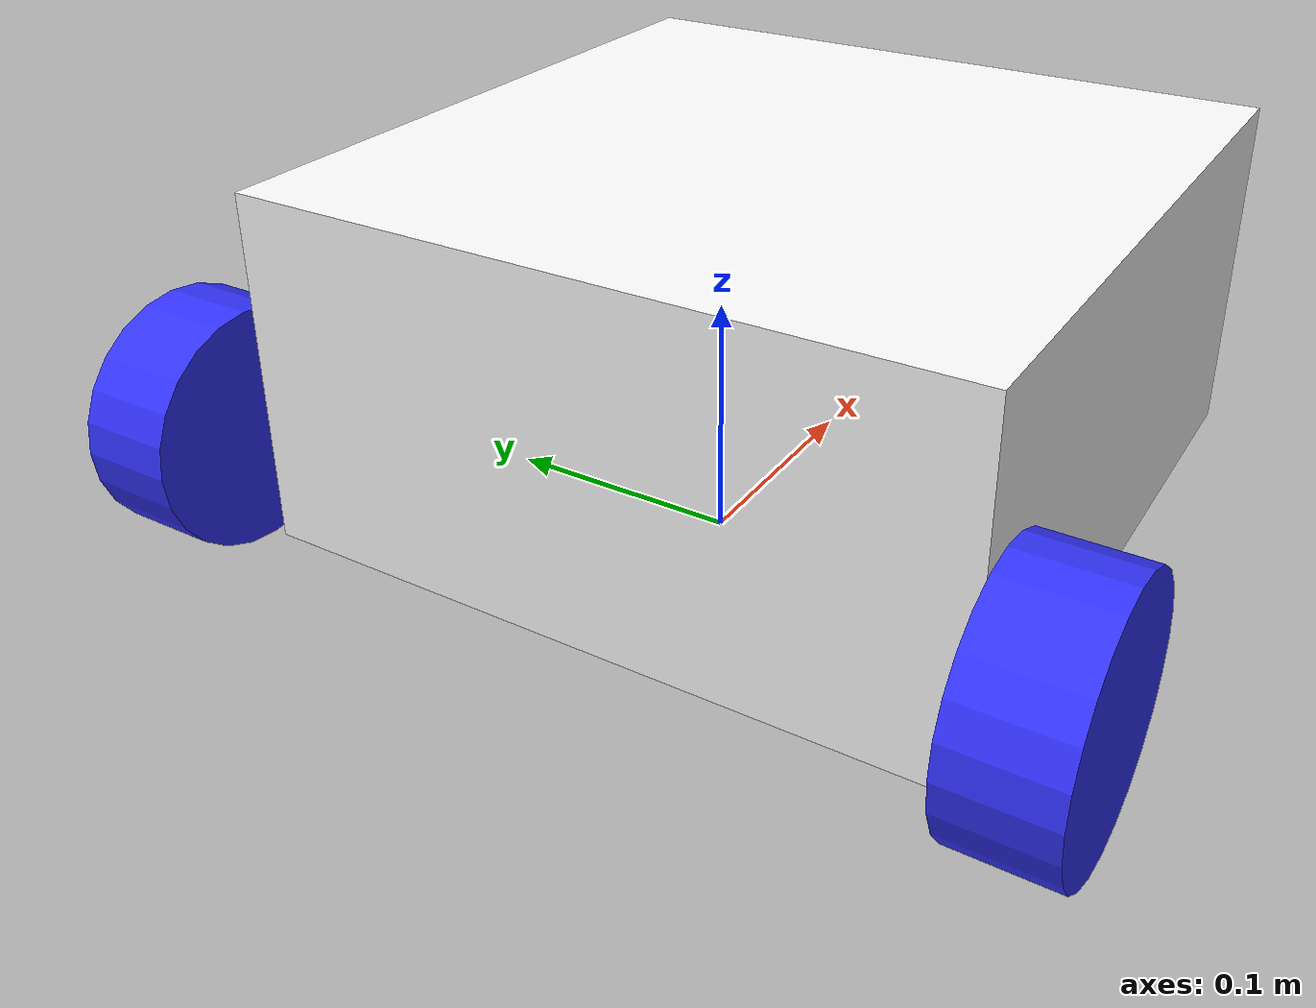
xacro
<?xml version="1.0"?>
<robot xmlns:xacro="http://www.ros.org/wiki/xacro" name="articubot">

  <!-- Include inertials -->
  <xacro:include filename="inertials.xacro"/>

  <!-- Define pi -->
  <xacro:property name="pi" value="3.14159265359"/>

  <!-- Materials -->
  <material name="white">
    <color rgba="1 1 1 1"/>
  </material>

  <material name="orange">
    <color rgba="1 0.3 0.1 1"/>
  </material>

  <material name="blue">
    <color rgba="0.2 0.2 1 1"/>
  </material>

  <material name="black">
    <color rgba="0 0 0 1"/>
  </material>

  <!-- Base Link -->
  <link name="base_link"/>

  <!-- Chassis -->
  <joint name="chassis_joint" type="fixed">
    <parent link="base_link"/>
    <child link="chassis"/>
    <origin xyz="-0.1 0 0"/>
  </joint>

  <link name="chassis">

    <visual>
      <origin xyz="0.15 0 0.075"/>
      <geometry>
        <box size="0.3 0.3 0.15"/>
      </geometry>
      <material name="white"/>
    </visual>

    <collision>
      <origin xyz="0.15 0 0.075"/>
      <geometry>
        <box size="0.3 0.3 0.15"/>
      </geometry>
    </collision>

    <xacro:inertial_box mass="0.5" x="0.3" y="0.3" z="0.15">
      <origin xyz="0 0 0" rpy="0 0 0"/>
    </xacro:inertial_box>

  </link>

  <!-- Left Wheel -->
  <joint name="left_wheel_joint" type="continuous">
    <parent link="chassis"/>
    <child link="left_wheel"/>
    <origin xyz="0 0.175 0.05" rpy="-${pi/2} 0 0"/>
    <axis xyz="0 0 1"/>
  </joint>

  <link name="left_wheel">

    <visual>
      <geometry>
        <cylinder radius="0.05" length="0.04"/>
      </geometry>
      <material name="blue"/>
    </visual>

    <collision>
      <geometry>
        <cylinder radius="0.05" length="0.04"/>
      </geometry>
    </collision>

    <xacro:inertial_cylinder mass="0.1" length="0.04" radius="0.05">
      <origin xyz="0 0 0" rpy="0 0 0"/>
    </xacro:inertial_cylinder>

  </link>

  <!-- Right Wheel -->
  <joint name="right_wheel_joint" type="continuous">
    <parent link="chassis"/>
    <child link="right_wheel"/>
    <origin xyz="0 -0.175 0.05" rpy="${pi/2} 0 0"/>
    <axis xyz="0 0 -1"/>
  </joint>

  <link name="right_wheel">

    <visual>
      <geometry>
        <cylinder radius="0.05" length="0.04"/>
      </geometry>
      <material name="blue"/>
    </visual>

    <collision>
      <geometry>
        <cylinder radius="0.05" length="0.04"/>
      </geometry>
    </collision>

    <xacro:inertial_cylinder mass="0.1" length="0.04" radius="0.05">
      <origin xyz="0 0 0" rpy="0 0 0"/>
    </xacro:inertial_cylinder>

  </link>

  <!-- Caster Wheel -->
  <joint name="caster_wheel_joint" type="fixed">
    <parent link="chassis"/>
    <child link="caster_wheel"/>
    <origin xyz="0.24 0 0"/>
  </joint>

  <link name="caster_wheel">

    <visual>
      <geometry>
        <sphere radius="0.05"/>
      </geometry>
      <material name="black"/>
    </visual>

    <collision>
      <geometry>
        <sphere radius="0.05"/>
      </geometry>
    </collision>

    <xacro:inertial_sphere mass="0.1" radius="0.05">
      <origin xyz="0 0 0" rpy="0 0 0"/>
    </xacro:inertial_sphere>

  </link>

</robot>

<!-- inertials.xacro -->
<robot xmlns:xacro="http://www.ros.org/wiki/xacro">

  <xacro:macro name="inertial_sphere" params="mass radius *origin">
    <inertial>
      <xacro:insert_block name="origin"/>
      <mass value="${mass}"/>
      <inertia ixx="${(2/5) * mass * (radius*radius)}"
               ixy="0.0" ixz="0.0"
               iyy="${(2/5) * mass * (radius*radius)}"
               iyz="0.0"
               izz="${(2/5) * mass * (radius*radius)}"/>
    </inertial>
  </xacro:macro>

  <xacro:macro name="inertial_box" params="mass x y z *origin">
    <inertial>
      <xacro:insert_block name="origin"/>
      <mass value="${mass}"/>
      <inertia ixx="${(1/12) * mass * (y*y + z*z)}"
               ixy="0.0" ixz="0.0"
               iyy="${(1/12) * mass * (x*x + z*z)}"
               iyz="0.0"
               izz="${(1/12) * mass * (x*x + y*y)}"/>
    </inertial>
  </xacro:macro>

  <xacro:macro name="inertial_cylinder" params="mass length radius *origin">
    <inertial>
      <xacro:insert_block name="origin"/>
      <mass value="${mass}"/>
      <inertia ixx="${(1/12) * mass * (3*radius*radius + length*length)}"
               ixy="0.0" ixz="0.0"
               iyy="${(1/12) * mass * (3*radius*radius + length*length)}"
               iyz="0.0"
               izz="${(1/2) * mass * (radius*radius)}"/>
    </inertial>
  </xacro:macro>

</robot>
